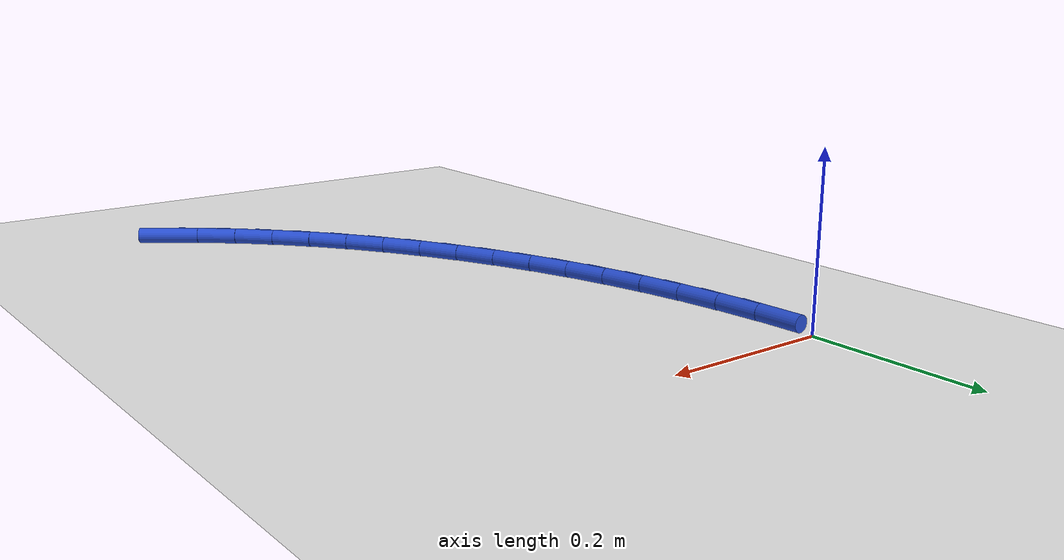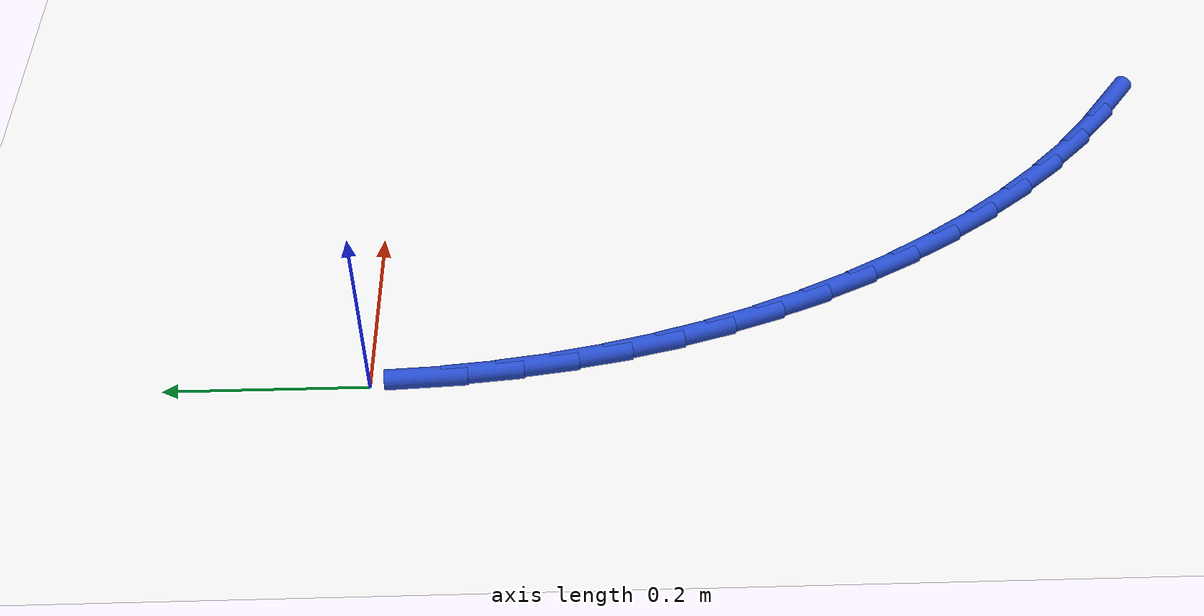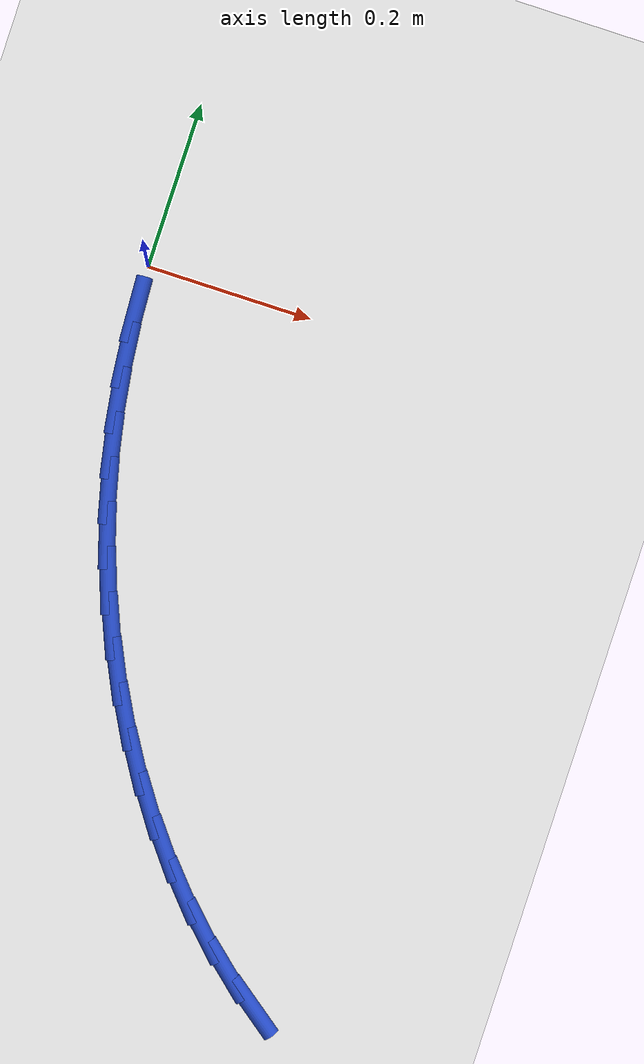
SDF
<sdf version="1.6">
 <world name="default">
  <model name="ground_plane">
   <static>1</static>
   <link name="link">
    <collision name="collision">
     <geometry><plane><normal>0 0 1</normal><size>100 100</size></plane></geometry>
     <surface><friction><ode><mu>100</mu><mu2>50</mu2></ode></friction></surface>
    </collision>
    <visual name="visual">
     <cast_shadows>0</cast_shadows>
     <geometry><plane><normal>0 0 1</normal><size>100 100</size></plane></geometry>
     <material>
      <script><uri>file://media/materials/scripts/gazebo.material</uri><name>Gazebo/WhiteGlow</name></script>
     </material>
    </visual>
   </link>
  </model>
  <model name="line">
   <link name="link_123">
    <pose>0.38421592573006247 -0.7872432880698732 0.01 0 1.57 -0.6438834978987589</pose>
    <collision name="collision">
     <geometry><cylinder><radius>0.01</radius><length>0.08</length></cylinder></geometry>
    </collision>
    <visual name="visual">
     <material>
      <script><name>Gazebo/Blue</name><uri>file://media/materials/scripts/gazebo.material</uri></script>
     </material>
     <geometry><cylinder><radius>0.01</radius><length>0.08</length></cylinder></geometry>
    </visual>
   </link>
   <link name="link_124">
    <pose>0.3420604286288709 -0.7556014708252804 0.01 0 1.57 -0.7179147936841248</pose>
    <collision name="collision">
     <geometry><cylinder><radius>0.01</radius><length>0.08</length></cylinder></geometry>
    </collision>
    <visual name="visual">
     <material>
      <script><name>Gazebo/Blue</name><uri>file://media/materials/scripts/gazebo.material</uri></script>
     </material>
     <geometry><cylinder><radius>0.01</radius><length>0.08</length></cylinder></geometry>
    </visual>
   </link>
   <link name="link_125">
    <pose>0.3021359960004805 -0.7207320549805956 0.01 0 1.57 -0.7871603405658149</pose>
    <collision name="collision">
     <geometry><cylinder><radius>0.01</radius><length>0.08</length></cylinder></geometry>
    </collision>
    <visual name="visual">
     <material>
      <script><name>Gazebo/Blue</name><uri>file://media/materials/scripts/gazebo.material</uri></script>
     </material>
     <geometry><cylinder><radius>0.01</radius><length>0.08</length></cylinder></geometry>
    </visual>
   </link>
   <link name="link_126">
    <pose>0.26450132272462695 -0.6829645094988686 0.01 0 1.57 -0.8520626275923099</pose>
    <collision name="collision">
     <geometry><cylinder><radius>0.01</radius><length>0.08</length></cylinder></geometry>
    </collision>
    <visual name="visual">
     <material>
      <script><name>Gazebo/Blue</name><uri>file://media/materials/scripts/gazebo.material</uri></script>
     </material>
     <geometry><cylinder><radius>0.01</radius><length>0.08</length></cylinder></geometry>
    </visual>
   </link>
   <link name="link_127">
    <pose>0.22921479713682524 -0.6426292143703586 0.01 0 1.57 -0.9131588190706397</pose>
    <collision name="collision">
     <geometry><cylinder><radius>0.01</radius><length>0.08</length></cylinder></geometry>
    </collision>
    <visual name="visual">
     <material>
      <script><name>Gazebo/Blue</name><uri>file://media/materials/scripts/gazebo.material</uri></script>
     </material>
     <geometry><cylinder><radius>0.01</radius><length>0.08</length></cylinder></geometry>
    </visual>
   </link>
   <link name="link_128">
    <pose>0.19633480757258842 -0.6000565495853244 0.01 0 1.57 -0.9710276662720032</pose>
    <collision name="collision">
     <geometry><cylinder><radius>0.01</radius><length>0.08</length></cylinder></geometry>
    </collision>
    <visual name="visual">
     <material>
      <script><name>Gazebo/Blue</name><uri>file://media/materials/scripts/gazebo.material</uri></script>
     </material>
     <geometry><cylinder><radius>0.01</radius><length>0.08</length></cylinder></geometry>
    </visual>
   </link>
   <link name="link_129">
    <pose>0.16591974236743015 -0.5555768951340241 0.01 0 1.57 -1.0262680962041009</pose>
    <collision name="collision">
     <geometry><cylinder><radius>0.01</radius><length>0.08</length></cylinder></geometry>
    </collision>
    <visual name="visual">
     <material>
      <script><name>Gazebo/Blue</name><uri>file://media/materials/scripts/gazebo.material</uri></script>
     </material>
     <geometry><cylinder><radius>0.01</radius><length>0.08</length></cylinder></geometry>
    </visual>
   </link>
   <link name="link_130">
    <pose>0.1380279898568641 -0.509520631006716 0.01 0 1.57 -1.079489442528686</pose>
    <collision name="collision">
     <geometry><cylinder><radius>0.01</radius><length>0.08</length></cylinder></geometry>
    </collision>
    <visual name="visual">
     <material>
      <script><name>Gazebo/Blue</name><uri>file://media/materials/scripts/gazebo.material</uri></script>
     </material>
     <geometry><cylinder><radius>0.01</radius><length>0.08</length></cylinder></geometry>
    </visual>
   </link>
   <link name="link_131">
    <pose>0.11271793837640356 -0.46221813719365823 0.01 0 1.57 -1.1313219775355192</pose>
    <collision name="collision">
     <geometry><cylinder><radius>0.01</radius><length>0.08</length></cylinder></geometry>
    </collision>
    <visual name="visual">
     <material>
      <script><name>Gazebo/Blue</name><uri>file://media/materials/scripts/gazebo.material</uri></script>
     </material>
     <geometry><cylinder><radius>0.01</radius><length>0.08</length></cylinder></geometry>
    </visual>
   </link>
   <link name="link_132">
    <pose>0.09004672760218792 -0.4139957321419165 0.01 0 1.57 -1.1826534012520533</pose>
    <collision name="collision">
     <geometry><cylinder><radius>0.01</radius><length>0.08</length></cylinder></geometry>
    </collision>
    <visual name="visual">
     <material>
      <script><name>Gazebo/Blue</name><uri>file://media/materials/scripts/gazebo.material</uri></script>
     </material>
     <geometry><cylinder><radius>0.01</radius><length>0.08</length></cylinder></geometry>
    </visual>
   </link>
   <link name="link_133">
    <pose>0.07002584038469155 -0.36503122528701654 0.01 0 1.57 -1.2338345936691488</pose>
    <collision name="collision">
     <geometry><cylinder><radius>0.01</radius><length>0.08</length></cylinder></geometry>
    </collision>
    <visual name="visual">
     <material>
      <script><name>Gazebo/Blue</name><uri>file://media/materials/scripts/gazebo.material</uri></script>
     </material>
     <geometry><cylinder><radius>0.01</radius><length>0.08</length></cylinder></geometry>
    </visual>
   </link>
   <link name="link_134">
    <pose>0.05260906668897567 -0.3153147670833581 0.01 0 1.57 -1.2845173386369546</pose>
    <collision name="collision">
     <geometry><cylinder><radius>0.01</radius><length>0.08</length></cylinder></geometry>
    </collision>
    <visual name="visual">
     <material>
      <script><name>Gazebo/Blue</name><uri>file://media/materials/scripts/gazebo.material</uri></script>
     </material>
     <geometry><cylinder><radius>0.01</radius><length>0.08</length></cylinder></geometry>
    </visual>
   </link>
   <link name="link_135">
    <pose>0.03774649922089598 -0.26482448182491414 0.01 0 1.57 -1.334336514891628</pose>
    <collision name="collision">
     <geometry><cylinder><radius>0.01</radius><length>0.08</length></cylinder></geometry>
    </collision>
    <visual name="visual">
     <material>
      <script><name>Gazebo/Blue</name><uri>file://media/materials/scripts/gazebo.material</uri></script>
     </material>
     <geometry><cylinder><radius>0.01</radius><length>0.08</length></cylinder></geometry>
    </visual>
   </link>
   <link name="link_136">
    <pose>0.025388230686308792 -0.2135384938056596 0.01 0 1.57 -1.3829565949835971</pose>
    <collision name="collision">
     <geometry><cylinder><radius>0.01</radius><length>0.08</length></cylinder></geometry>
    </collision>
    <visual name="visual">
     <material>
      <script><name>Gazebo/Blue</name><uri>file://media/materials/scripts/gazebo.material</uri></script>
     </material>
     <geometry><cylinder><radius>0.01</radius><length>0.08</length></cylinder></geometry>
    </visual>
   </link>
   <link name="link_137">
    <pose>0.015484353791069735 -0.1614349273195675 0.01 0 1.57 -1.4300822184077229</pose>
    <collision name="collision">
     <geometry><cylinder><radius>0.01</radius><length>0.08</length></cylinder></geometry>
    </collision>
    <visual name="visual">
     <material>
      <script><name>Gazebo/Blue</name><uri>file://media/materials/scripts/gazebo.material</uri></script>
     </material>
     <geometry><cylinder><radius>0.01</radius><length>0.08</length></cylinder></geometry>
    </visual>
   </link>
   <link name="link_138">
    <pose>0.007984961241034663 -0.10849190666061123 0.01 0 1.57 -1.4754653610319466</pose>
    <collision name="collision">
     <geometry><cylinder><radius>0.01</radius><length>0.08</length></cylinder></geometry>
    </collision>
    <visual name="visual">
     <material>
      <script><name>Gazebo/Blue</name><uri>file://media/materials/scripts/gazebo.material</uri></script>
     </material>
     <geometry><cylinder><radius>0.01</radius><length>0.08</length></cylinder></geometry>
    </visual>
   </link>
   <link name="link_139">
    <pose>0.0028401457420594543 -0.054687556122764436 0.01 0 1.57 -1.5189089023127258</pose>
    <collision name="collision">
     <geometry><cylinder><radius>0.01</radius><length>0.08</length></cylinder></geometry>
    </collision>
    <visual name="visual">
     <material>
      <script><name>Gazebo/Blue</name><uri>file://media/materials/scripts/gazebo.material</uri></script>
     </material>
     <geometry><cylinder><radius>0.01</radius><length>0.08</length></cylinder></geometry>
    </visual>
   </link>
  </model>
 </world>
</sdf>
